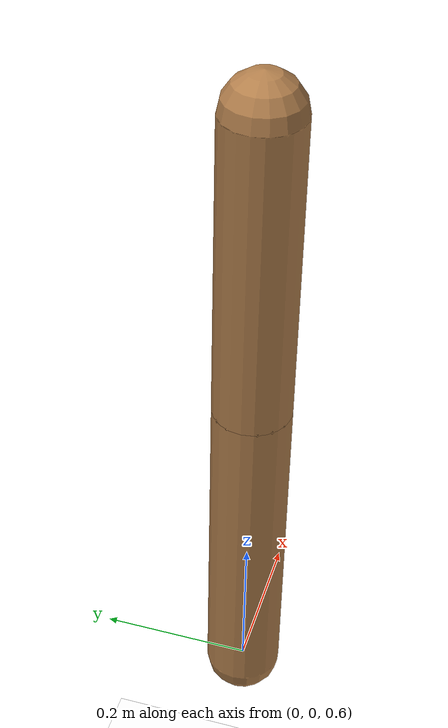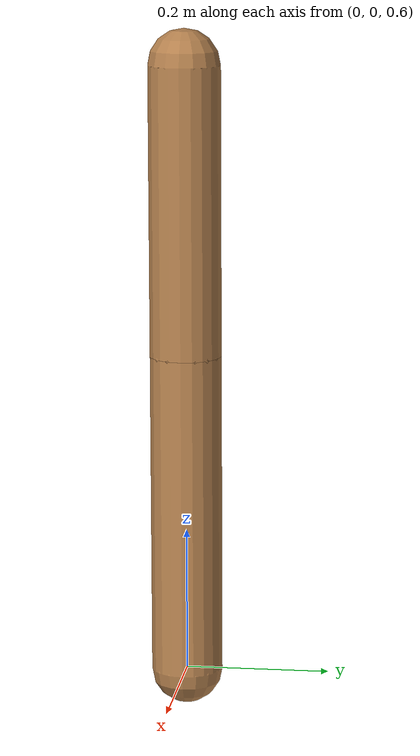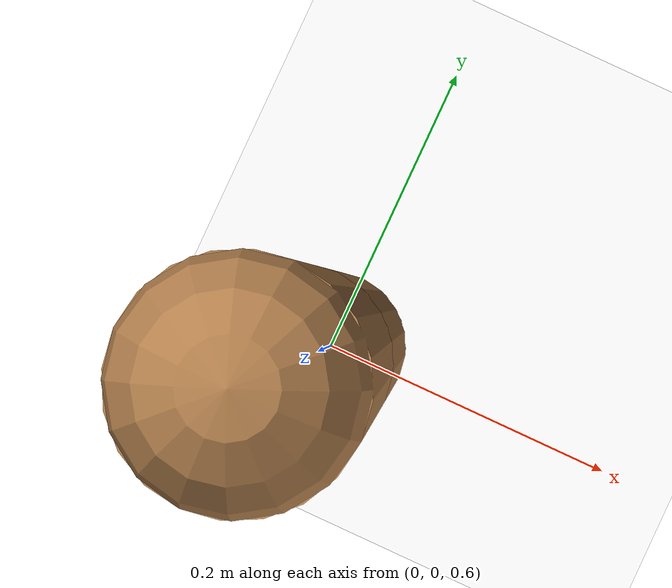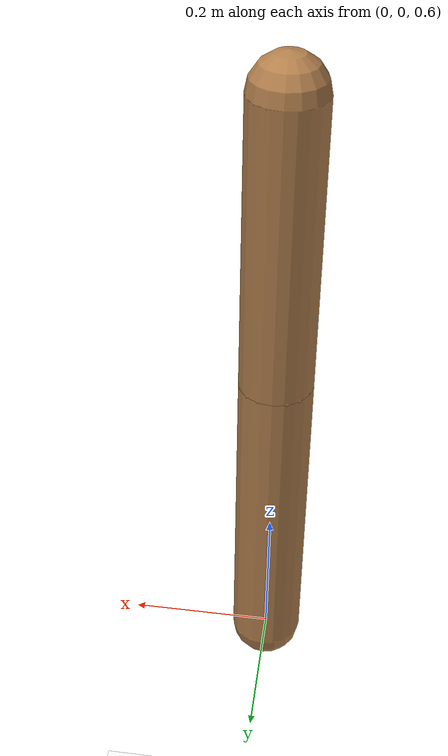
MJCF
<mujoco model="walker">
  <asset>
    <texture name="skybox" type="skybox" builtin="gradient" rgb1=".2 .3 .4" rgb2="0 0 0" width="800" height="800" mark="random" markrgb="1 1 1"/>
    <texture name="grid" type="2d" builtin="checker" rgb1=".1 .2 .3" rgb2=".2 .3 .4" width="300" height="300" mark="edge" markrgb=".2 .3 .4"/>
    <material name="grid" texture="grid" texrepeat="1 1" texuniform="true" reflectance=".2"/>
    <material name="self" rgba=".7 .5 .3 1"/>
    <material name="plain_white" rgba="1 1 1 1" specular="0" shininess="0"/>
  </asset>
  <visual>
    <headlight ambient=".4 .4 .4" diffuse=".8 .8 .8" specular="0.1 0.1 0.1"/>
    <map znear=".001"/>
    <quality shadowsize="16384"/>
  </visual>
  <compiler angle="degree" coordinate="global" inertiafromgeom="true"/>
  <default>
    <joint armature="1" damping="1" limited="true"/>
    <geom conaffinity="0" condim="1" margin="0.001" solimp=".8 .8 .01" solref=".02 1" rgba=".7 .5 .3 1"/>
    <motor ctrllimited="true" ctrlrange="-.4 .4"/>
  </default>
  <option integrator="RK4" timestep="0.002"/>
  <worldbody>
    <light cutoff="100" diffuse="1 1 1" dir="0 -0.3 -1.3" directional="true" exponent="1" pos="0 30 130" specular=".1 .1 .1"/>
    <geom conaffinity="1" condim="3" name="floor" pos="0 0 0" rgba="1 1 1 1" size="200 200 .125" type="plane" material="grid"/>
    <body name="0" pos="0 0 1.25">
      <camera name="track" mode="trackcom" pos="0 -3 1" xyaxes="1 0 0 0 0 1"/>
      <joint armature="0" axis="1 0 0" damping="0" limited="false" name="rootx" pos="0 0 0" stiffness="0" type="slide"/>
      <joint armature="0" axis="0 0 1" damping="0" limited="false" name="rootz" pos="0 0 0" ref="1.25" stiffness="0" type="slide"/>
      <joint armature="0" axis="0 1 0" damping="0" limited="false" name="0_joint" pos="0 0 1.25" stiffness="0" type="hinge"/>
      <geom friction="0.9" fromto="-0 0 1.45 0 0 1.05" size="0.05" type="capsule"/>
      <body name="1" pos="0 0 1.05">
        <joint axis="0 -1 0" name="1_joint" pos="0 0 1.05" range="-180 180" type="hinge"/>
        <geom friction="2.0" fromto="0 0 1.05 0 0 0.6" size="0.05" type="capsule"/>
      </body>
      <body name="2" pos="0 0 1.05">
        <joint axis="0 -1 0" name="2_joint" pos="0 0 1.05" range="-180 180" type="hinge"/>
        <geom friction="2.0" fromto="0 0 1.05 0 0 0.6" size="0.05" type="capsule"/>
      </body>
    </body>
  </worldbody>
  <actuator>
    <motor ctrllimited="true" ctrlrange="-1.0 1.0" gear="200" joint="1_joint" name="1_joint"/>
    <motor ctrllimited="true" ctrlrange="-1.0 1.0" gear="200" joint="2_joint" name="2_joint"/>
  </actuator>
</mujoco>
